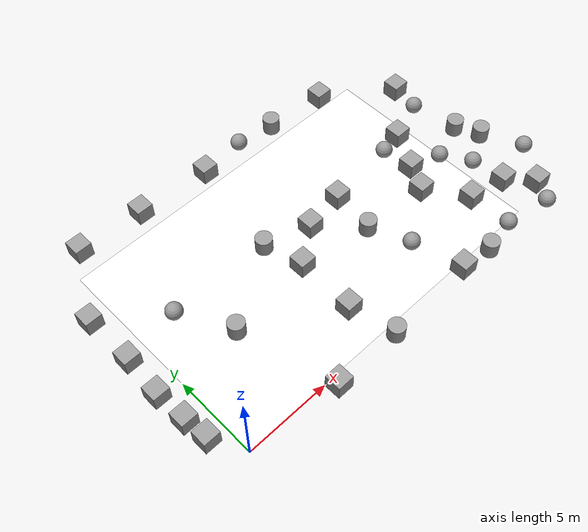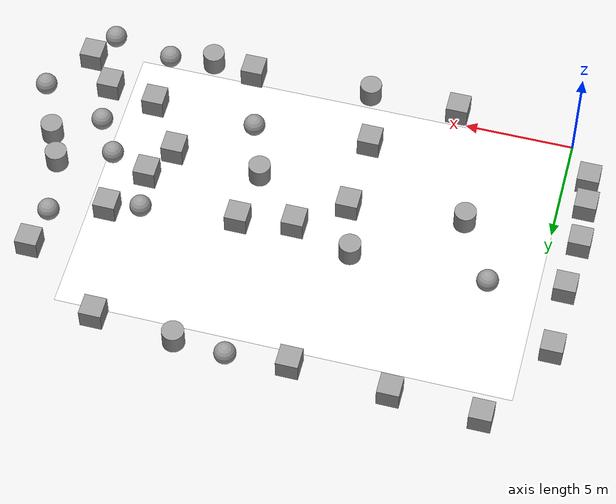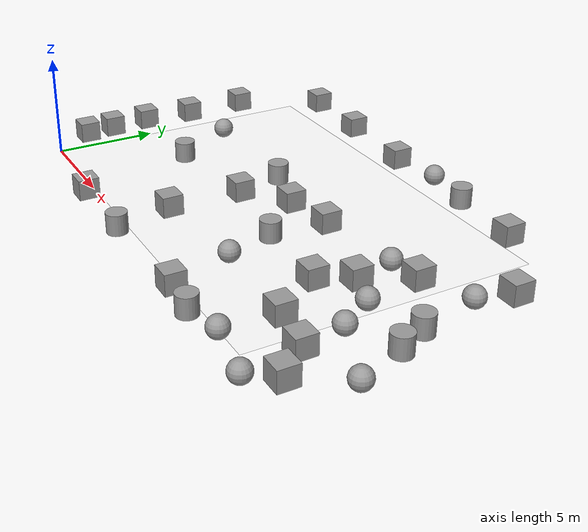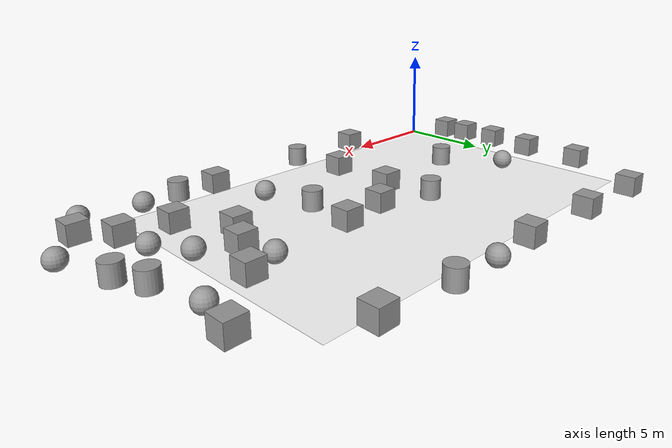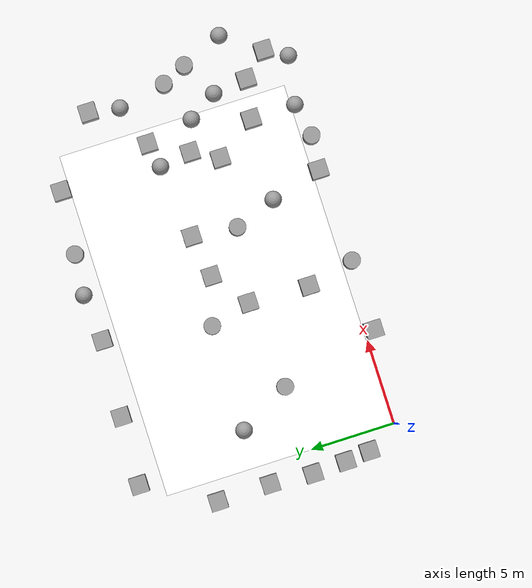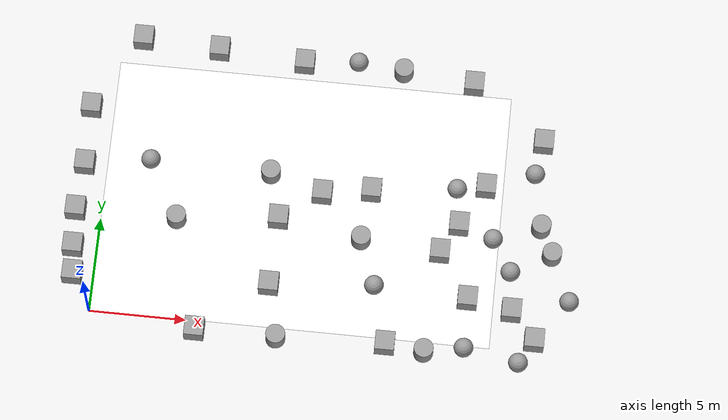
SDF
<sdf version="1.7">
 <world name="bfmc_official">
  <gravity>0 0 -9.8</gravity>
  <light name="c1" type="point">
   <pose>0 0 2 0 -0 0</pose>
   <diffuse>125 125 125 125</diffuse>
   <specular>50 50 50 50</specular>
   <attenuation><range>20</range><constant>0.3</constant><quadratic>0</quadratic><linear>0</linear></attenuation>
   <cast_shadows>0</cast_shadows>
   <direction>0 0 -1</direction>
   <spot><inner_angle>0</inner_angle><outer_angle>0</outer_angle><falloff>0</falloff></spot>
  </light>
  <light name="c2" type="point">
   <pose>15 0 2 0 -0 0</pose>
   <diffuse>125 125 125 125</diffuse>
   <specular>50 50 50 50</specular>
   <attenuation><range>20</range><constant>0.3</constant><quadratic>0</quadratic><linear>0</linear></attenuation>
   <cast_shadows>0</cast_shadows>
   <direction>0 0 -1</direction>
   <spot><inner_angle>0</inner_angle><outer_angle>0</outer_angle><falloff>0</falloff></spot>
  </light>
  <light name="c3" type="point">
   <pose>0 -15 2 0 -0 0</pose>
   <diffuse>125 125 125 125</diffuse>
   <specular>50 50 50 50</specular>
   <attenuation><range>20</range><constant>0.3</constant><quadratic>0</quadratic><linear>0</linear></attenuation>
   <cast_shadows>0</cast_shadows>
   <direction>0 0 -1</direction>
   <spot><inner_angle>0</inner_angle><outer_angle>0</outer_angle><falloff>0</falloff></spot>
  </light>
  <light name="c4" type="point">
   <pose>15 -15 2 0 -0 0</pose>
   <diffuse>125 125 125 125</diffuse>
   <specular>50 50 50 50</specular>
   <attenuation><range>50</range><constant>0.3</constant><quadratic>0</quadratic><linear>0</linear></attenuation>
   <cast_shadows>0</cast_shadows>
   <direction>0 0 -1</direction>
   <spot><inner_angle>0</inner_angle><outer_angle>0</outer_angle><falloff>0</falloff></spot>
  </light>
  <model name="track">
   <static>1</static>
   <link name="link">
    <collision name="collision">
     <geometry><plane><normal>0 0 1</normal><size>20.541 13.656</size></plane></geometry>
     <surface>
      <contact><collide_bitmask>65535</collide_bitmask></contact>
      <friction><ode><mu>1</mu><mu2>1</mu2></ode></friction>
     </surface>
    </collision>
    <visual name="visual">
     <geometry><plane><normal>0 0 1</normal><size>20.541 13.656</size></plane></geometry>
     <material>
      <ambient>1 1 1 1</ambient>
      <diffuse>1 1 1 1</diffuse>
      <specular>0 0 0 0</specular>
      <emissive>1 1 1 1</emissive>
      <script>
       <uri>model://track/materials/scripts</uri>
       <uri>model://track/materials/textures</uri>
       <name>BFMC_MATERIAL</name>
      </script>
     </material>
    </visual>
   </link>
   <pose>10.2706 6.893 0 0 -0 0</pose>
  </model>
  <magnetic_field>6e-06 2.3e-05 -4.2e-05</magnetic_field>
  <atmosphere type="adiabatic"/>
  <physics name="default_physics" default="0" type="ode">
   <max_step_size>0.001</max_step_size>
   <real_time_factor>1</real_time_factor>
   <real_time_update_rate>1000</real_time_update_rate>
  </physics>
  <scene><ambient>0.4 0.4 0.4 1</ambient><background>0.7 0.7 0.7 1</background><shadows>1</shadows></scene>
  <audio><device>default</device></audio>
  <spherical_coordinates>
   <surface_model>EARTH_WGS84</surface_model>
   <latitude_deg>0</latitude_deg>
   <longitude_deg>0</longitude_deg>
   <elevation>0</elevation>
   <heading_deg>0</heading_deg>
  </spherical_coordinates>
  <model name="unit_cylinder">
   <pose>17.217 -0.511049 0.499997 3e-06 4e-06 -0</pose>
   <link name="link">
    <inertial>
     <mass>1</mass>
     <inertia><ixx>0.145833</ixx><ixy>0</ixy><ixz>0</ixz><iyy>0.145833</iyy><iyz>0</iyz><izz>0.125</izz></inertia>
    </inertial>
    <collision name="collision">
     <geometry><cylinder><radius>0.5</radius><length>1</length></cylinder></geometry>
    </collision>
    <visual name="visual">
     <geometry><cylinder><radius>0.5</radius><length>1</length></cylinder></geometry>
     <material>
      <script><name>Gazebo/Grey</name><uri>file://media/materials/scripts/gazebo.material</uri></script>
     </material>
    </visual>
   </link>
  </model>
  <model name="unit_cylinder_0">
   <pose>9.64984 -0.518057 0.499997 3e-06 4e-06 -0</pose>
   <link name="link">
    <inertial>
     <mass>1</mass>
     <inertia><ixx>0.145833</ixx><ixy>0</ixy><ixz>0</ixz><iyy>0.145833</iyy><iyz>0</iyz><izz>0.125</izz></inertia>
    </inertial>
    <collision name="collision">
     <geometry><cylinder><radius>0.5</radius><length>1</length></cylinder></geometry>
    </collision>
    <visual name="visual">
     <geometry><cylinder><radius>0.5</radius><length>1</length></cylinder></geometry>
     <material>
      <script><name>Gazebo/Grey</name><uri>file://media/materials/scripts/gazebo.material</uri></script>
     </material>
    </visual>
   </link>
  </model>
  <model name="unit_box">
   <pose>5.49472 -0.504296 0.499995 1e-05 -0 0</pose>
   <link name="link">
    <inertial>
     <mass>1</mass>
     <inertia>
      <ixx>0.166667</ixx>
      <ixy>0</ixy>
      <ixz>0</ixz>
      <iyy>0.166667</iyy>
      <iyz>0</iyz>
      <izz>0.166667</izz>
     </inertia>
    </inertial>
    <collision name="collision"><geometry><box><size>1 1 1</size></box></geometry></collision>
    <visual name="visual">
     <geometry><box><size>1 1 1</size></box></geometry>
     <material>
      <script><name>Gazebo/Grey</name><uri>file://media/materials/scripts/gazebo.material</uri></script>
     </material>
    </visual>
   </link>
  </model>
  <model name="unit_box_0">
   <pose>-1.05299 1.86973 0.499995 1e-05 -0 0</pose>
   <link name="link">
    <inertial>
     <mass>1</mass>
     <inertia>
      <ixx>0.166667</ixx>
      <ixy>0</ixy>
      <ixz>0</ixz>
      <iyy>0.166667</iyy>
      <iyz>0</iyz>
      <izz>0.166667</izz>
     </inertia>
    </inertial>
    <collision name="collision"><geometry><box><size>1 1 1</size></box></geometry></collision>
    <visual name="visual">
     <geometry><box><size>1 1 1</size></box></geometry>
     <material>
      <script><name>Gazebo/Grey</name><uri>file://media/materials/scripts/gazebo.material</uri></script>
     </material>
    </visual>
   </link>
  </model>
  <model name="unit_box_1">
   <pose>-1.2033 3.33446 0.499995 1e-05 -0 0</pose>
   <link name="link">
    <inertial>
     <mass>1</mass>
     <inertia>
      <ixx>0.166667</ixx>
      <ixy>0</ixy>
      <ixz>0</ixz>
      <iyy>0.166667</iyy>
      <iyz>0</iyz>
      <izz>0.166667</izz>
     </inertia>
    </inertial>
    <collision name="collision"><geometry><box><size>1 1 1</size></box></geometry></collision>
    <visual name="visual">
     <geometry><box><size>1 1 1</size></box></geometry>
     <material>
      <script><name>Gazebo/Grey</name><uri>file://media/materials/scripts/gazebo.material</uri></script>
     </material>
    </visual>
   </link>
  </model>
  <model name="unit_box_2">
   <pose>-1.3082 5.32998 0.499995 1e-05 -0 0</pose>
   <link name="link">
    <inertial>
     <mass>1</mass>
     <inertia>
      <ixx>0.166667</ixx>
      <ixy>0</ixy>
      <ixz>0</ixz>
      <iyy>0.166667</iyy>
      <iyz>0</iyz>
      <izz>0.166667</izz>
     </inertia>
    </inertial>
    <collision name="collision"><geometry><box><size>1 1 1</size></box></geometry></collision>
    <visual name="visual">
     <geometry><box><size>1 1 1</size></box></geometry>
     <material>
      <script><name>Gazebo/Grey</name><uri>file://media/materials/scripts/gazebo.material</uri></script>
     </material>
    </visual>
   </link>
  </model>
  <model name="unit_box_3">
   <pose>-1.12986 7.85231 0.499995 1e-05 -0 0</pose>
   <link name="link">
    <inertial>
     <mass>1</mass>
     <inertia>
      <ixx>0.166667</ixx>
      <ixy>0</ixy>
      <ixz>0</ixz>
      <iyy>0.166667</iyy>
      <iyz>0</iyz>
      <izz>0.166667</izz>
     </inertia>
    </inertial>
    <collision name="collision"><geometry><box><size>1 1 1</size></box></geometry></collision>
    <visual name="visual">
     <geometry><box><size>1 1 1</size></box></geometry>
     <material>
      <script><name>Gazebo/Grey</name><uri>file://media/materials/scripts/gazebo.material</uri></script>
     </material>
    </visual>
   </link>
  </model>
  <model name="unit_box_4">
   <pose>-1.16355 11.0049 0.499995 1e-05 -0 0</pose>
   <link name="link">
    <inertial>
     <mass>1</mass>
     <inertia>
      <ixx>0.166667</ixx>
      <ixy>0</ixy>
      <ixz>0</ixz>
      <iyy>0.166667</iyy>
      <iyz>0</iyz>
      <izz>0.166667</izz>
     </inertia>
    </inertial>
    <collision name="collision"><geometry><box><size>1 1 1</size></box></geometry></collision>
    <visual name="visual">
     <geometry><box><size>1 1 1</size></box></geometry>
     <material>
      <script><name>Gazebo/Grey</name><uri>file://media/materials/scripts/gazebo.material</uri></script>
     </material>
    </visual>
   </link>
  </model>
  <model name="unit_box_5">
   <pose>1.109 15.0332 0.499995 1e-05 -0 0</pose>
   <link name="link">
    <inertial>
     <mass>1</mass>
     <inertia>
      <ixx>0.166667</ixx>
      <ixy>0</ixy>
      <ixz>0</ixz>
      <iyy>0.166667</iyy>
      <iyz>0</iyz>
      <izz>0.166667</izz>
     </inertia>
    </inertial>
    <collision name="collision"><geometry><box><size>1 1 1</size></box></geometry></collision>
    <visual name="visual">
     <geometry><box><size>1 1 1</size></box></geometry>
     <material>
      <script><name>Gazebo/Grey</name><uri>file://media/materials/scripts/gazebo.material</uri></script>
     </material>
    </visual>
   </link>
  </model>
  <model name="unit_box_6">
   <pose>5.13271 14.8187 0.499995 1e-05 -0 0</pose>
   <link name="link">
    <inertial>
     <mass>1</mass>
     <inertia>
      <ixx>0.166667</ixx>
      <ixy>0</ixy>
      <ixz>0</ixz>
      <iyy>0.166667</iyy>
      <iyz>0</iyz>
      <izz>0.166667</izz>
     </inertia>
    </inertial>
    <collision name="collision"><geometry><box><size>1 1 1</size></box></geometry></collision>
    <visual name="visual">
     <geometry><box><size>1 1 1</size></box></geometry>
     <material>
      <script><name>Gazebo/Grey</name><uri>file://media/materials/scripts/gazebo.material</uri></script>
     </material>
    </visual>
   </link>
  </model>
  <model name="unit_box_7">
   <pose>9.63577 14.5303 0.499995 1e-05 -0 0</pose>
   <link name="link">
    <inertial>
     <mass>1</mass>
     <inertia>
      <ixx>0.166667</ixx>
      <ixy>0</ixy>
      <ixz>0</ixz>
      <iyy>0.166667</iyy>
      <iyz>0</iyz>
      <izz>0.166667</izz>
     </inertia>
    </inertial>
    <collision name="collision"><geometry><box><size>1 1 1</size></box></geometry></collision>
    <visual name="visual">
     <geometry><box><size>1 1 1</size></box></geometry>
     <material>
      <script><name>Gazebo/Grey</name><uri>file://media/materials/scripts/gazebo.material</uri></script>
     </material>
    </visual>
   </link>
  </model>
  <model name="unit_sphere">
   <pose>12.436 14.7765 0.5 0 -0 0</pose>
   <link name="link">
    <inertial>
     <mass>1</mass>
     <inertia><ixx>0.1</ixx><ixy>0</ixy><ixz>0</ixz><iyy>0.1</iyy><iyz>0</iyz><izz>0.1</izz></inertia>
    </inertial>
    <collision name="collision"><geometry><sphere><radius>0.5</radius></sphere></geometry></collision>
    <visual name="visual">
     <geometry><sphere><radius>0.5</radius></sphere></geometry>
     <material>
      <script><name>Gazebo/Grey</name><uri>file://media/materials/scripts/gazebo.material</uri></script>
     </material>
    </visual>
   </link>
  </model>
  <model name="unit_cylinder_1">
   <pose>14.8242 14.5393 0.499997 3e-06 4e-06 -0</pose>
   <link name="link">
    <inertial>
     <mass>1</mass>
     <inertia><ixx>0.145833</ixx><ixy>0</ixy><ixz>0</ixz><iyy>0.145833</iyy><iyz>0</iyz><izz>0.125</izz></inertia>
    </inertial>
    <collision name="collision">
     <geometry><cylinder><radius>0.5</radius><length>1</length></cylinder></geometry>
    </collision>
    <visual name="visual">
     <geometry><cylinder><radius>0.5</radius><length>1</length></cylinder></geometry>
     <material>
      <script><name>Gazebo/Grey</name><uri>file://media/materials/scripts/gazebo.material</uri></script>
     </material>
    </visual>
   </link>
  </model>
  <model name="unit_box_8">
   <pose>18.5417 14.199 0.499995 1e-05 -0 0</pose>
   <link name="link">
    <inertial>
     <mass>1</mass>
     <inertia>
      <ixx>0.166667</ixx>
      <ixy>0</ixy>
      <ixz>0</ixz>
      <iyy>0.166667</iyy>
      <iyz>0</iyz>
      <izz>0.166667</izz>
     </inertia>
    </inertial>
    <collision name="collision"><geometry><box><size>1 1 1</size></box></geometry></collision>
    <visual name="visual">
     <geometry><box><size>1 1 1</size></box></geometry>
     <material>
      <script><name>Gazebo/Grey</name><uri>file://media/materials/scripts/gazebo.material</uri></script>
     </material>
    </visual>
   </link>
  </model>
  <model name="unit_box_9">
   <pose>22.4077 11.3516 0.499995 1e-05 -0 0</pose>
   <link name="link">
    <inertial>
     <mass>1</mass>
     <inertia>
      <ixx>0.166667</ixx>
      <ixy>0</ixy>
      <ixz>0</ixz>
      <iyy>0.166667</iyy>
      <iyz>0</iyz>
      <izz>0.166667</izz>
     </inertia>
    </inertial>
    <collision name="collision"><geometry><box><size>1 1 1</size></box></geometry></collision>
    <visual name="visual">
     <geometry><box><size>1 1 1</size></box></geometry>
     <material>
      <script><name>Gazebo/Grey</name><uri>file://media/materials/scripts/gazebo.material</uri></script>
     </material>
    </visual>
   </link>
  </model>
  <model name="unit_sphere_0">
   <pose>22.1108 9.52281 0.5 0 -0 0</pose>
   <link name="link">
    <inertial>
     <mass>1</mass>
     <inertia><ixx>0.1</ixx><ixy>0</ixy><ixz>0</ixz><iyy>0.1</iyy><iyz>0</iyz><izz>0.1</izz></inertia>
    </inertial>
    <collision name="collision"><geometry><sphere><radius>0.5</radius></sphere></geometry></collision>
    <visual name="visual">
     <geometry><sphere><radius>0.5</radius></sphere></geometry>
     <material>
      <script><name>Gazebo/Grey</name><uri>file://media/materials/scripts/gazebo.material</uri></script>
     </material>
    </visual>
   </link>
  </model>
  <model name="unit_cylinder_2">
   <pose>22.6426 6.69573 0.499997 3e-06 4e-06 -0</pose>
   <link name="link">
    <inertial>
     <mass>1</mass>
     <inertia><ixx>0.145833</ixx><ixy>0</ixy><ixz>0</ixz><iyy>0.145833</iyy><iyz>0</iyz><izz>0.125</izz></inertia>
    </inertial>
    <collision name="collision">
     <geometry><cylinder><radius>0.5</radius><length>1</length></cylinder></geometry>
    </collision>
    <visual name="visual">
     <geometry><cylinder><radius>0.5</radius><length>1</length></cylinder></geometry>
     <material>
      <script><name>Gazebo/Grey</name><uri>file://media/materials/scripts/gazebo.material</uri></script>
     </material>
    </visual>
   </link>
  </model>
  <model name="unit_box_10">
   <pose>22.774 0.618121 0.499995 1e-05 -0 0</pose>
   <link name="link">
    <inertial>
     <mass>1</mass>
     <inertia>
      <ixx>0.166667</ixx>
      <ixy>0</ixy>
      <ixz>0</ixz>
      <iyy>0.166667</iyy>
      <iyz>0</iyz>
      <izz>0.166667</izz>
     </inertia>
    </inertial>
    <collision name="collision"><geometry><box><size>1 1 1</size></box></geometry></collision>
    <visual name="visual">
     <geometry><box><size>1 1 1</size></box></geometry>
     <material>
      <script><name>Gazebo/Grey</name><uri>file://media/materials/scripts/gazebo.material</uri></script>
     </material>
    </visual>
   </link>
  </model>
  <model name="unit_cylinder_3">
   <pose>8.49799 8.27311 0.499997 3e-06 4e-06 -0</pose>
   <link name="link">
    <inertial>
     <mass>1</mass>
     <inertia><ixx>0.145833</ixx><ixy>0</ixy><ixz>0</ixz><iyy>0.145833</iyy><iyz>0</iyz><izz>0.125</izz></inertia>
    </inertial>
    <collision name="collision">
     <geometry><cylinder><radius>0.5</radius><length>1</length></cylinder></geometry>
    </collision>
    <visual name="visual">
     <geometry><cylinder><radius>0.5</radius><length>1</length></cylinder></geometry>
     <material>
      <script><name>Gazebo/Grey</name><uri>file://media/materials/scripts/gazebo.material</uri></script>
     </material>
    </visual>
   </link>
  </model>
  <model name="unit_box_11">
   <pose>11.2572 7.45113 0.499995 1e-05 -0 0</pose>
   <link name="link">
    <inertial>
     <mass>1</mass>
     <inertia>
      <ixx>0.166667</ixx>
      <ixy>0</ixy>
      <ixz>0</ixz>
      <iyy>0.166667</iyy>
      <iyz>0</iyz>
      <izz>0.166667</izz>
     </inertia>
    </inertial>
    <collision name="collision"><geometry><box><size>1 1 1</size></box></geometry></collision>
    <visual name="visual">
     <geometry><box><size>1 1 1</size></box></geometry>
     <material>
      <script><name>Gazebo/Grey</name><uri>file://media/materials/scripts/gazebo.material</uri></script>
     </material>
    </visual>
   </link>
  </model>
  <model name="unit_box_12">
   <pose>9.1463 5.88724 0.499995 1e-05 -0 0</pose>
   <link name="link">
    <inertial>
     <mass>1</mass>
     <inertia>
      <ixx>0.166667</ixx>
      <ixy>0</ixy>
      <ixz>0</ixz>
      <iyy>0.166667</iyy>
      <iyz>0</iyz>
      <izz>0.166667</izz>
     </inertia>
    </inertial>
    <collision name="collision"><geometry><box><size>1 1 1</size></box></geometry></collision>
    <visual name="visual">
     <geometry><box><size>1 1 1</size></box></geometry>
     <material>
      <script><name>Gazebo/Grey</name><uri>file://media/materials/scripts/gazebo.material</uri></script>
     </material>
    </visual>
   </link>
  </model>
  <model name="unit_box_13">
   <pose>9.0191 2.27336 0.499995 1e-05 -0 0</pose>
   <link name="link">
    <inertial>
     <mass>1</mass>
     <inertia>
      <ixx>0.166667</ixx>
      <ixy>0</ixy>
      <ixz>0</ixz>
      <iyy>0.166667</iyy>
      <iyz>0</iyz>
      <izz>0.166667</izz>
     </inertia>
    </inertial>
    <collision name="collision"><geometry><box><size>1 1 1</size></box></geometry></collision>
    <visual name="visual">
     <geometry><box><size>1 1 1</size></box></geometry>
     <material>
      <script><name>Gazebo/Grey</name><uri>file://media/materials/scripts/gazebo.material</uri></script>
     </material>
    </visual>
   </link>
  </model>
  <model name="unit_sphere_1">
   <pose>2.24558 8.35385 0.5 0 -0 0</pose>
   <link name="link">
    <inertial>
     <mass>1</mass>
     <inertia><ixx>0.1</ixx><ixy>0</ixy><ixz>0</ixz><iyy>0.1</iyy><iyz>0</iyz><izz>0.1</izz></inertia>
    </inertial>
    <collision name="collision"><geometry><sphere><radius>0.5</radius></sphere></geometry></collision>
    <visual name="visual">
     <geometry><sphere><radius>0.5</radius></sphere></geometry>
     <material>
      <script><name>Gazebo/Grey</name><uri>file://media/materials/scripts/gazebo.material</uri></script>
     </material>
    </visual>
   </link>
  </model>
  <model name="unit_box_14">
   <pose>18.4304 6.44499 0.499995 1e-05 -0 0</pose>
   <link name="link">
    <inertial>
     <mass>1</mass>
     <inertia>
      <ixx>0.166667</ixx>
      <ixy>0</ixy>
      <ixz>0</ixz>
      <iyy>0.166667</iyy>
      <iyz>0</iyz>
      <izz>0.166667</izz>
     </inertia>
    </inertial>
    <collision name="collision"><geometry><box><size>1 1 1</size></box></geometry></collision>
    <visual name="visual">
     <geometry><box><size>1 1 1</size></box></geometry>
     <material>
      <script><name>Gazebo/Grey</name><uri>file://media/materials/scripts/gazebo.material</uri></script>
     </material>
    </visual>
   </link>
  </model>
  <model name="unit_box_15">
   <pose>19.2014 2.50462 0.499995 1e-05 -0 0</pose>
   <link name="link">
    <inertial>
     <mass>1</mass>
     <inertia>
      <ixx>0.166667</ixx>
      <ixy>0</ixy>
      <ixz>0</ixz>
      <iyy>0.166667</iyy>
      <iyz>0</iyz>
      <izz>0.166667</izz>
     </inertia>
    </inertial>
    <collision name="collision"><geometry><box><size>1 1 1</size></box></geometry></collision>
    <visual name="visual">
     <geometry><box><size>1 1 1</size></box></geometry>
     <material>
      <script><name>Gazebo/Grey</name><uri>file://media/materials/scripts/gazebo.material</uri></script>
     </material>
    </visual>
   </link>
  </model>
  <model name="unit_cylinder_4">
   <pose>3.9133 5.34523 0.499997 3e-06 4e-06 -0</pose>
   <link name="link">
    <inertial>
     <mass>1</mass>
     <inertia><ixx>0.145833</ixx><ixy>0</ixy><ixz>0</ixz><iyy>0.145833</iyy><iyz>0</iyz><izz>0.125</izz></inertia>
    </inertial>
    <collision name="collision">
     <geometry><cylinder><radius>0.5</radius><length>1</length></cylinder></geometry>
    </collision>
    <visual name="visual">
     <geometry><cylinder><radius>0.5</radius><length>1</length></cylinder></geometry>
     <material>
      <script><name>Gazebo/Grey</name><uri>file://media/materials/scripts/gazebo.material</uri></script>
     </material>
    </visual>
   </link>
  </model>
  <model name="unit_box_16">
   <pose>13.7726 7.82888 0.499995 1e-05 -0 0</pose>
   <link name="link">
    <inertial>
     <mass>1</mass>
     <inertia>
      <ixx>0.166667</ixx>
      <ixy>0</ixy>
      <ixz>0</ixz>
      <iyy>0.166667</iyy>
      <iyz>0</iyz>
      <izz>0.166667</izz>
     </inertia>
    </inertial>
    <collision name="collision"><geometry><box><size>1 1 1</size></box></geometry></collision>
    <visual name="visual">
     <geometry><box><size>1 1 1</size></box></geometry>
     <material>
      <script><name>Gazebo/Grey</name><uri>file://media/materials/scripts/gazebo.material</uri></script>
     </material>
    </visual>
   </link>
  </model>
  <model name="unit_box_17">
   <pose>21.491 2.07748 0.499995 1e-05 -0 0</pose>
   <link name="link">
    <inertial>
     <mass>1</mass>
     <inertia>
      <ixx>0.166667</ixx>
      <ixy>0</ixy>
      <ixz>0</ixz>
      <iyy>0.166667</iyy>
      <iyz>0</iyz>
      <izz>0.166667</izz>
     </inertia>
    </inertial>
    <collision name="collision"><geometry><box><size>1 1 1</size></box></geometry></collision>
    <visual name="visual">
     <geometry><box><size>1 1 1</size></box></geometry>
     <material>
      <script><name>Gazebo/Grey</name><uri>file://media/materials/scripts/gazebo.material</uri></script>
     </material>
    </visual>
   </link>
  </model>
  <model name="unit_sphere_2">
   <pose>21.2661 4.11305 0.5 0 -0 0</pose>
   <link name="link">
    <inertial>
     <mass>1</mass>
     <inertia><ixx>0.1</ixx><ixy>0</ixy><ixz>0</ixz><iyy>0.1</iyy><iyz>0</iyz><izz>0.1</izz></inertia>
    </inertial>
    <collision name="collision"><geometry><sphere><radius>0.5</radius></sphere></geometry></collision>
    <visual name="visual">
     <geometry><sphere><radius>0.5</radius></sphere></geometry>
     <material>
      <script><name>Gazebo/Grey</name><uri>file://media/materials/scripts/gazebo.material</uri></script>
     </material>
    </visual>
   </link>
  </model>
  <model name="unit_box_18">
   <pose>17.5792 4.88485 0.499995 1e-05 -0 0</pose>
   <link name="link">
    <inertial>
     <mass>1</mass>
     <inertia>
      <ixx>0.166667</ixx>
      <ixy>0</ixy>
      <ixz>0</ixz>
      <iyy>0.166667</iyy>
      <iyz>0</iyz>
      <izz>0.166667</izz>
     </inertia>
    </inertial>
    <collision name="collision"><geometry><box><size>1 1 1</size></box></geometry></collision>
    <visual name="visual">
     <geometry><box><size>1 1 1</size></box></geometry>
     <material>
      <script><name>Gazebo/Grey</name><uri>file://media/materials/scripts/gazebo.material</uri></script>
     </material>
    </visual>
   </link>
  </model>
  <model name="unit_sphere_3">
   <pose>20.2351 5.79632 0.5 0 -0 0</pose>
   <link name="link">
    <inertial>
     <mass>1</mass>
     <inertia><ixx>0.1</ixx><ixy>0</ixy><ixz>0</ixz><iyy>0.1</iyy><iyz>0</iyz><izz>0.1</izz></inertia>
    </inertial>
    <collision name="collision"><geometry><sphere><radius>0.5</radius></sphere></geometry></collision>
    <visual name="visual">
     <geometry><sphere><radius>0.5</radius></sphere></geometry>
     <material>
      <script><name>Gazebo/Grey</name><uri>file://media/materials/scripts/gazebo.material</uri></script>
     </material>
    </visual>
   </link>
  </model>
  <model name="unit_sphere_4">
   <pose>19.2357 -0.157595 0.5 0 -0 0</pose>
   <link name="link">
    <inertial>
     <mass>1</mass>
     <inertia><ixx>0.1</ixx><ixy>0</ixy><ixz>0</ixz><iyy>0.1</iyy><iyz>0</iyz><izz>0.1</izz></inertia>
    </inertial>
    <collision name="collision"><geometry><sphere><radius>0.5</radius></sphere></geometry></collision>
    <visual name="visual">
     <geometry><sphere><radius>0.5</radius></sphere></geometry>
     <material>
      <script><name>Gazebo/Grey</name><uri>file://media/materials/scripts/gazebo.material</uri></script>
     </material>
    </visual>
   </link>
  </model>
  <model name="unit_box_19">
   <pose>15.2229 -0.300596 0.499995 1e-05 -0 0</pose>
   <link name="link">
    <inertial>
     <mass>1</mass>
     <inertia>
      <ixx>0.166667</ixx>
      <ixy>0</ixy>
      <ixz>0</ixz>
      <iyy>0.166667</iyy>
      <iyz>0</iyz>
      <izz>0.166667</izz>
     </inertia>
    </inertial>
    <collision name="collision"><geometry><box><size>1 1 1</size></box></geometry></collision>
    <visual name="visual">
     <geometry><box><size>1 1 1</size></box></geometry>
     <material>
      <script><name>Gazebo/Grey</name><uri>file://media/materials/scripts/gazebo.material</uri></script>
     </material>
    </visual>
   </link>
  </model>
  <model name="unit_cylinder_5">
   <pose>13.4763 5.16075 0.499997 3e-06 4e-06 -0</pose>
   <link name="link">
    <inertial>
     <mass>1</mass>
     <inertia><ixx>0.145833</ixx><ixy>0</ixy><ixz>0</ixz><iyy>0.145833</iyy><iyz>0</iyz><izz>0.125</izz></inertia>
    </inertial>
    <collision name="collision">
     <geometry><cylinder><radius>0.5</radius><length>1</length></cylinder></geometry>
    </collision>
    <visual name="visual">
     <geometry><cylinder><radius>0.5</radius><length>1</length></cylinder></geometry>
     <material>
      <script><name>Gazebo/Grey</name><uri>file://media/materials/scripts/gazebo.material</uri></script>
     </material>
    </visual>
   </link>
  </model>
  <model name="unit_sphere_5">
   <pose>22.0573 -0.669809 0.5 0 -0 0</pose>
   <link name="link">
    <inertial>
     <mass>1</mass>
     <inertia><ixx>0.1</ixx><ixy>0</ixy><ixz>0</ixz><iyy>0.1</iyy><iyz>0</iyz><izz>0.1</izz></inertia>
    </inertial>
    <collision name="collision"><geometry><sphere><radius>0.5</radius></sphere></geometry></collision>
    <visual name="visual">
     <geometry><sphere><radius>0.5</radius></sphere></geometry>
     <material>
      <script><name>Gazebo/Grey</name><uri>file://media/materials/scripts/gazebo.material</uri></script>
     </material>
    </visual>
   </link>
  </model>
  <model name="unit_cylinder_6">
   <pose>23.3136 5.25712 0.499997 3e-06 4e-06 -0</pose>
   <link name="link">
    <inertial>
     <mass>1</mass>
     <inertia><ixx>0.145833</ixx><ixy>0</ixy><ixz>0</ixz><iyy>0.145833</iyy><iyz>0</iyz><izz>0.125</izz></inertia>
    </inertial>
    <collision name="collision">
     <geometry><cylinder><radius>0.5</radius><length>1</length></cylinder></geometry>
    </collision>
    <visual name="visual">
     <geometry><cylinder><radius>0.5</radius><length>1</length></cylinder></geometry>
     <material>
      <script><name>Gazebo/Grey</name><uri>file://media/materials/scripts/gazebo.material</uri></script>
     </material>
    </visual>
   </link>
  </model>
  <model name="unit_sphere_6">
   <pose>18.1652 8.32313 0.5 0 -0 0</pose>
   <link name="link">
    <inertial>
     <mass>1</mass>
     <inertia><ixx>0.1</ixx><ixy>0</ixy><ixz>0</ixz><iyy>0.1</iyy><iyz>0</iyz><izz>0.1</izz></inertia>
    </inertial>
    <collision name="collision"><geometry><sphere><radius>0.5</radius></sphere></geometry></collision>
    <visual name="visual">
     <geometry><sphere><radius>0.5</radius></sphere></geometry>
     <material>
      <script><name>Gazebo/Grey</name><uri>file://media/materials/scripts/gazebo.material</uri></script>
     </material>
    </visual>
   </link>
  </model>
  <model name="unit_box_20">
   <pose>19.6417 8.63227 0.499995 1e-05 -0 0</pose>
   <link name="link">
    <inertial>
     <mass>1</mass>
     <inertia>
      <ixx>0.166667</ixx>
      <ixy>0</ixy>
      <ixz>0</ixz>
      <iyy>0.166667</iyy>
      <iyz>0</iyz>
      <izz>0.166667</izz>
     </inertia>
    </inertial>
    <collision name="collision"><geometry><box><size>1 1 1</size></box></geometry></collision>
    <visual name="visual">
     <geometry><box><size>1 1 1</size></box></geometry>
     <material>
      <script><name>Gazebo/Grey</name><uri>file://media/materials/scripts/gazebo.material</uri></script>
     </material>
    </visual>
   </link>
  </model>
  <model name="unit_sphere_7">
   <pose>24.384 2.80848 0.5 0 -0 0</pose>
   <link name="link">
    <inertial>
     <mass>1</mass>
     <inertia><ixx>0.1</ixx><ixy>0</ixy><ixz>0</ixz><iyy>0.1</iyy><iyz>0</iyz><izz>0.1</izz></inertia>
    </inertial>
    <collision name="collision"><geometry><sphere><radius>0.5</radius></sphere></geometry></collision>
    <visual name="visual">
     <geometry><sphere><radius>0.5</radius></sphere></geometry>
     <material>
      <script><name>Gazebo/Grey</name><uri>file://media/materials/scripts/gazebo.material</uri></script>
     </material>
    </visual>
   </link>
  </model>
  <model name="unit_sphere_8">
   <pose>14.3847 2.70769 0.5 0 -0 0</pose>
   <link name="link">
    <inertial>
     <mass>1</mass>
     <inertia><ixx>0.1</ixx><ixy>0</ixy><ixz>0</ixz><iyy>0.1</iyy><iyz>0</iyz><izz>0.1</izz></inertia>
    </inertial>
    <collision name="collision"><geometry><sphere><radius>0.5</radius></sphere></geometry></collision>
    <visual name="visual">
     <geometry><sphere><radius>0.5</radius></sphere></geometry>
     <material>
      <script><name>Gazebo/Grey</name><uri>file://media/materials/scripts/gazebo.material</uri></script>
     </material>
    </visual>
   </link>
  </model>
 </world>
</sdf>
